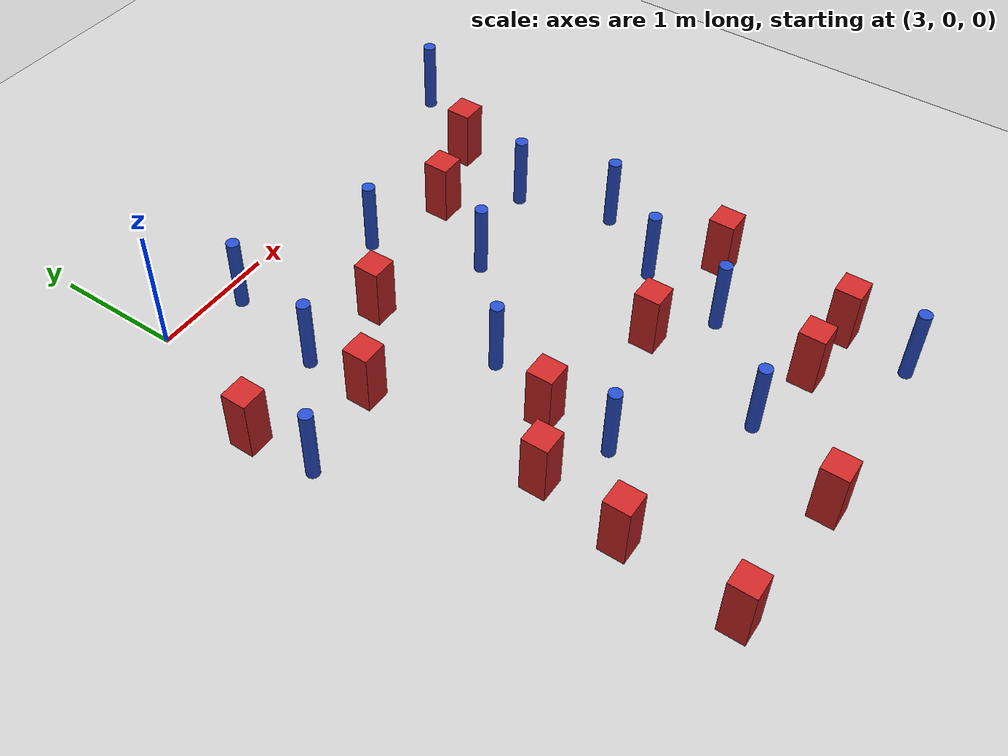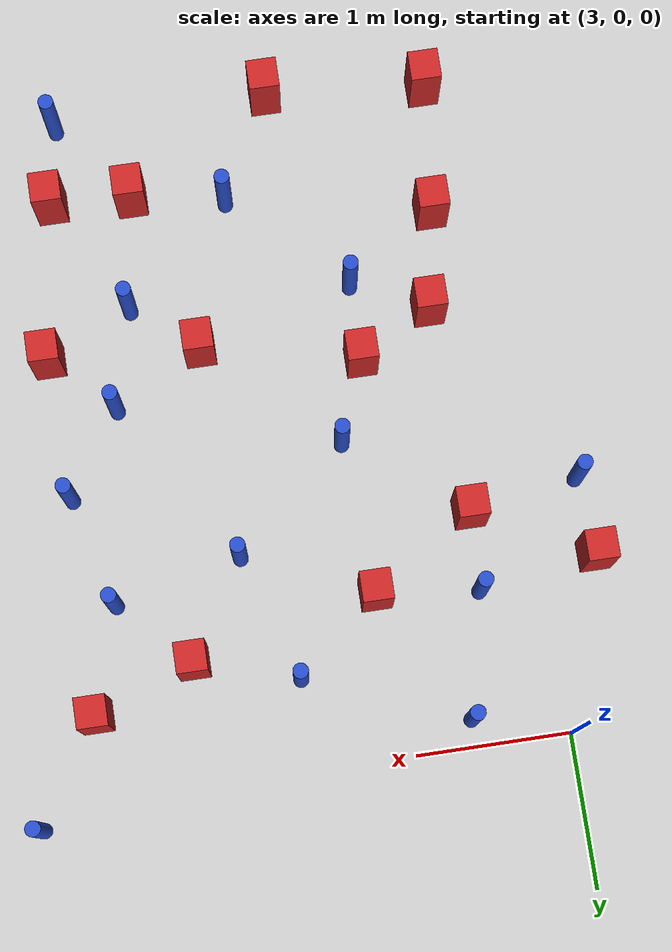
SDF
<sdf version="1.6">
 <world name="default">
  <model name="ground_plane">
   <static>1</static>
   <link name="link">
    <collision name="collision">
     <geometry><plane><normal>0 0 1</normal><size>100 100</size></plane></geometry>
     <surface><friction><ode><mu>100</mu><mu2>50</mu2></ode></friction></surface>
    </collision>
    <visual name="visual">
     <cast_shadows>0</cast_shadows>
     <geometry><plane><normal>0 0 1</normal><size>100 100</size></plane></geometry>
     <material>
      <ambient>1.0 1.0 1.0 1.0</ambient>
      <diffuse>0.8 0.8 0.8 1.0</diffuse>
      <specular>0.01 0.01 0.01 1.000000</specular>
     </material>
    </visual>
   </link>
  </model>
  <model name="pole_obstacle13">
   <static>true</static>
   <pose>3.61538598424 -0.178297688606 -3.09024884793e-07 -7.19054271913e-07 -2.11315075118e-07 -1.93935509258e-07</pose>
   <link name="link">
    <pose>0 0 0.3 0 -0 0</pose>
    <inertial>
     <mass>1</mass>
     <inertia><ixx>0.145833</ixx><ixy>0</ixy><ixz>0</ixz><iyy>0.145833</iyy><iyz>0</iyz><izz>0.125</izz></inertia>
    </inertial>
    <collision name="collision">
     <geometry><cylinder><radius>0.05</radius><length>.6</length></cylinder></geometry>
    </collision>
    <visual name="visual">
     <geometry><cylinder><radius>0.05</radius><length>.6</length></cylinder></geometry>
     <material>
      <script><name>Gazebo/Blue</name><uri>file://media/materials/scripts/gazebo.material</uri></script>
     </material>
    </visual>
   </link>
  </model>
  <model name="square_post_obstacle10">
   <static>true</static>
   <pose>6.00634124442 -2.9178933508 -4.36207812815e-07 3.75137919937e-06 9.77721102514e-07 2.47381364184e-05</pose>
   <link name="link">
    <pose>0 0 0.25 0 -0 0</pose>
    <inertial>
     <mass>100</mass>
     <inertia>
      <ixx>0.166667</ixx>
      <ixy>0</ixy>
      <ixz>0</ixz>
      <iyy>0.166667</iyy>
      <iyz>0</iyz>
      <izz>0.166667</izz>
     </inertia>
    </inertial>
    <collision name="collision"><geometry><box><size>.2 .2 .5</size></box></geometry></collision>
    <visual name="visual">
     <geometry><box><size>.2 .2 .5</size></box></geometry>
     <material>
      <script><name>Gazebo/Red</name><uri>file://media/materials/scripts/gazebo.material</uri></script>
     </material>
    </visual>
   </link>
  </model>
  <model name="square_post_obstacle13">
   <static>true</static>
   <pose>4.1084067479 -1.06865431788 -4.36207812815e-07 3.75137919937e-06 9.77721102514e-07 2.47381364184e-05</pose>
   <link name="link">
    <pose>0 0 0.25 0 -0 0</pose>
    <inertial>
     <mass>100</mass>
     <inertia>
      <ixx>0.166667</ixx>
      <ixy>0</ixy>
      <ixz>0</ixz>
      <iyy>0.166667</iyy>
      <iyz>0</iyz>
      <izz>0.166667</izz>
     </inertia>
    </inertial>
    <collision name="collision"><geometry><box><size>.2 .2 .5</size></box></geometry></collision>
    <visual name="visual">
     <geometry><box><size>.2 .2 .5</size></box></geometry>
     <material>
      <script><name>Gazebo/Red</name><uri>file://media/materials/scripts/gazebo.material</uri></script>
     </material>
    </visual>
   </link>
  </model>
  <model name="square_post_obstacle16">
   <static>true</static>
   <pose>5.85840954703 -3.97679554772 -4.36207812815e-07 3.75137919937e-06 9.77721102514e-07 2.47381364184e-05</pose>
   <link name="link">
    <pose>0 0 0.25 0 -0 0</pose>
    <inertial>
     <mass>100</mass>
     <inertia>
      <ixx>0.166667</ixx>
      <ixy>0</ixy>
      <ixz>0</ixz>
      <iyy>0.166667</iyy>
      <iyz>0</iyz>
      <izz>0.166667</izz>
     </inertia>
    </inertial>
    <collision name="collision"><geometry><box><size>.2 .2 .5</size></box></geometry></collision>
    <visual name="visual">
     <geometry><box><size>.2 .2 .5</size></box></geometry>
     <material>
      <script><name>Gazebo/Red</name><uri>file://media/materials/scripts/gazebo.material</uri></script>
     </material>
    </visual>
   </link>
  </model>
  <model name="square_post_obstacle18">
   <static>true</static>
   <pose>3.27307317317 -4.44356269826 -4.36207812815e-07 3.75137919937e-06 9.77721102514e-07 2.47381364184e-05</pose>
   <link name="link">
    <pose>0 0 0.25 0 -0 0</pose>
    <inertial>
     <mass>100</mass>
     <inertia>
      <ixx>0.166667</ixx>
      <ixy>0</ixy>
      <ixz>0</ixz>
      <iyy>0.166667</iyy>
      <iyz>0</iyz>
      <izz>0.166667</izz>
     </inertia>
    </inertial>
    <collision name="collision"><geometry><box><size>.2 .2 .5</size></box></geometry></collision>
    <visual name="visual">
     <geometry><box><size>.2 .2 .5</size></box></geometry>
     <material>
      <script><name>Gazebo/Red</name><uri>file://media/materials/scripts/gazebo.material</uri></script>
     </material>
    </visual>
   </link>
  </model>
  <model name="square_post_obstacle38">
   <static>true</static>
   <pose>3.9673430957 -2.62754604842 -4.36207812815e-07 3.75137919937e-06 9.77721102514e-07 2.47381364184e-05</pose>
   <link name="link">
    <pose>0 0 0.25 0 -0 0</pose>
    <inertial>
     <mass>100</mass>
     <inertia>
      <ixx>0.166667</ixx>
      <ixy>0</ixy>
      <ixz>0</ixz>
      <iyy>0.166667</iyy>
      <iyz>0</iyz>
      <izz>0.166667</izz>
     </inertia>
    </inertial>
    <collision name="collision"><geometry><box><size>.2 .2 .5</size></box></geometry></collision>
    <visual name="visual">
     <geometry><box><size>.2 .2 .5</size></box></geometry>
     <material>
      <script><name>Gazebo/Red</name><uri>file://media/materials/scripts/gazebo.material</uri></script>
     </material>
    </visual>
   </link>
  </model>
  <model name="pole_obstacle50">
   <static>true</static>
   <pose>2.69446637997 -1.63381578746 -3.09024884793e-07 -7.19054271912e-07 -2.11315075122e-07 -1.93935509259e-07</pose>
   <link name="link">
    <pose>0 0 0.3 0 -0 0</pose>
    <inertial>
     <mass>1</mass>
     <inertia><ixx>0.145833</ixx><ixy>0</ixy><ixz>0</ixz><iyy>0.145833</iyy><iyz>0</iyz><izz>0.125</izz></inertia>
    </inertial>
    <collision name="collision">
     <geometry><cylinder><radius>0.05</radius><length>.6</length></cylinder></geometry>
    </collision>
    <visual name="visual">
     <geometry><cylinder><radius>0.05</radius><length>.6</length></cylinder></geometry>
     <material>
      <script><name>Gazebo/Blue</name><uri>file://media/materials/scripts/gazebo.material</uri></script>
     </material>
    </visual>
   </link>
  </model>
  <model name="pole_obstacle56">
   <static>true</static>
   <pose>5.77068111608 -4.50896995325 -3.09024884793e-07 -7.19054271911e-07 -2.1131507516e-07 -1.93935509277e-07</pose>
   <link name="link">
    <pose>0 0 0.3 0 -0 0</pose>
    <inertial>
     <mass>1</mass>
     <inertia><ixx>0.145833</ixx><ixy>0</ixy><ixz>0</ixz><iyy>0.145833</iyy><iyz>0</iyz><izz>0.125</izz></inertia>
    </inertial>
    <collision name="collision">
     <geometry><cylinder><radius>0.05</radius><length>.6</length></cylinder></geometry>
    </collision>
    <visual name="visual">
     <geometry><cylinder><radius>0.05</radius><length>.6</length></cylinder></geometry>
     <material>
      <script><name>Gazebo/Blue</name><uri>file://media/materials/scripts/gazebo.material</uri></script>
     </material>
    </visual>
   </link>
  </model>
  <model name="pole_obstacle57">
   <static>true</static>
   <pose>4.17469020177 -2.08683572138 -3.09024884793e-07 -7.19054271912e-07 -2.11315075144e-07 -1.93935509269e-07</pose>
   <link name="link">
    <pose>0 0 0.3 0 -0 0</pose>
    <inertial>
     <mass>1</mass>
     <inertia><ixx>0.145833</ixx><ixy>0</ixy><ixz>0</ixz><iyy>0.145833</iyy><iyz>0</iyz><izz>0.125</izz></inertia>
    </inertial>
    <collision name="collision">
     <geometry><cylinder><radius>0.05</radius><length>.6</length></cylinder></geometry>
    </collision>
    <visual name="visual">
     <geometry><cylinder><radius>0.05</radius><length>.6</length></cylinder></geometry>
     <material>
      <script><name>Gazebo/Blue</name><uri>file://media/materials/scripts/gazebo.material</uri></script>
     </material>
    </visual>
   </link>
  </model>
  <model name="square_post_obstacle44">
   <static>true</static>
   <pose>5.00976881419 -2.84937262354 -4.36207812815e-07 3.75137919937e-06 9.77721102514e-07 2.47381364184e-05</pose>
   <link name="link">
    <pose>0 0 0.25 0 -0 0</pose>
    <inertial>
     <mass>100</mass>
     <inertia>
      <ixx>0.166667</ixx>
      <ixy>0</ixy>
      <ixz>0</ixz>
      <iyy>0.166667</iyy>
      <iyz>0</iyz>
      <izz>0.166667</izz>
     </inertia>
    </inertial>
    <collision name="collision"><geometry><box><size>.2 .2 .5</size></box></geometry></collision>
    <visual name="visual">
     <geometry><box><size>.2 .2 .5</size></box></geometry>
     <material>
      <script><name>Gazebo/Red</name><uri>file://media/materials/scripts/gazebo.material</uri></script>
     </material>
    </visual>
   </link>
  </model>
  <model name="square_post_obstacle45">
   <static>true</static>
   <pose>5.32962520952 -0.795322266309 -4.36207812815e-07 3.75137919937e-06 9.77721102514e-07 2.47381364184e-05</pose>
   <link name="link">
    <pose>0 0 0.25 0 -0 0</pose>
    <inertial>
     <mass>100</mass>
     <inertia>
      <ixx>0.166667</ixx>
      <ixy>0</ixy>
      <ixz>0</ixz>
      <iyy>0.166667</iyy>
      <iyz>0</iyz>
      <izz>0.166667</izz>
     </inertia>
    </inertial>
    <collision name="collision"><geometry><box><size>.2 .2 .5</size></box></geometry></collision>
    <visual name="visual">
     <geometry><box><size>.2 .2 .5</size></box></geometry>
     <material>
      <script><name>Gazebo/Red</name><uri>file://media/materials/scripts/gazebo.material</uri></script>
     </material>
    </visual>
   </link>
  </model>
  <model name="square_post_obstacle54">
   <static>true</static>
   <pose>3.47399532427 -2.90747570712 -4.36207812815e-07 3.75137919937e-06 9.77721102514e-07 2.47381364184e-05</pose>
   <link name="link">
    <pose>0 0 0.25 0 -0 0</pose>
    <inertial>
     <mass>100</mass>
     <inertia>
      <ixx>0.166667</ixx>
      <ixy>0</ixy>
      <ixz>0</ixz>
      <iyy>0.166667</iyy>
      <iyz>0</iyz>
      <izz>0.166667</izz>
     </inertia>
    </inertial>
    <collision name="collision"><geometry><box><size>.2 .2 .5</size></box></geometry></collision>
    <visual name="visual">
     <geometry><box><size>.2 .2 .5</size></box></geometry>
     <material>
      <script><name>Gazebo/Red</name><uri>file://media/materials/scripts/gazebo.material</uri></script>
     </material>
    </visual>
   </link>
  </model>
  <model name="pole_obstacle77">
   <static>true</static>
   <pose>5.43277344218 -3.18272493803 -3.09024884793e-07 -7.19054271912e-07 -2.11315075144e-07 -1.93935509269e-07</pose>
   <link name="link">
    <pose>0 0 0.3 0 -0 0</pose>
    <inertial>
     <mass>1</mass>
     <inertia><ixx>0.145833</ixx><ixy>0</ixy><ixz>0</ixz><iyy>0.145833</iyy><iyz>0</iyz><izz>0.125</izz></inertia>
    </inertial>
    <collision name="collision">
     <geometry><cylinder><radius>0.05</radius><length>.6</length></cylinder></geometry>
    </collision>
    <visual name="visual">
     <geometry><cylinder><radius>0.05</radius><length>.6</length></cylinder></geometry>
     <material>
      <script><name>Gazebo/Blue</name><uri>file://media/materials/scripts/gazebo.material</uri></script>
     </material>
    </visual>
   </link>
  </model>
  <model name="square_post_obstacle71">
   <static>true</static>
   <pose>3.42283665446 -1.51356876248 -4.36207812815e-07 3.75137919937e-06 9.77721102514e-07 2.47381364184e-05</pose>
   <link name="link">
    <pose>0 0 0.25 0 -0 0</pose>
    <inertial>
     <mass>100</mass>
     <inertia>
      <ixx>0.166667</ixx>
      <ixy>0</ixy>
      <ixz>0</ixz>
      <iyy>0.166667</iyy>
      <iyz>0</iyz>
      <izz>0.166667</izz>
     </inertia>
    </inertial>
    <collision name="collision"><geometry><box><size>.2 .2 .5</size></box></geometry></collision>
    <visual name="visual">
     <geometry><box><size>.2 .2 .5</size></box></geometry>
     <material>
      <script><name>Gazebo/Red</name><uri>file://media/materials/scripts/gazebo.material</uri></script>
     </material>
    </visual>
   </link>
  </model>
  <model name="pole_obstacle89">
   <static>true</static>
   <pose>3.43356436222 -0.990397719746 -3.09024884793e-07 -7.19054271912e-07 -2.11315075118e-07 -1.93935509258e-07</pose>
   <link name="link">
    <pose>0 0 0.3 0 -0 0</pose>
    <inertial>
     <mass>1</mass>
     <inertia><ixx>0.145833</ixx><ixy>0</ixy><ixz>0</ixz><iyy>0.145833</iyy><iyz>0</iyz><izz>0.125</izz></inertia>
    </inertial>
    <collision name="collision">
     <geometry><cylinder><radius>0.05</radius><length>.6</length></cylinder></geometry>
    </collision>
    <visual name="visual">
     <geometry><cylinder><radius>0.05</radius><length>.6</length></cylinder></geometry>
     <material>
      <script><name>Gazebo/Blue</name><uri>file://media/materials/scripts/gazebo.material</uri></script>
     </material>
    </visual>
   </link>
  </model>
  <model name="square_post_obstacle100">
   <static>true</static>
   <pose>5.98866814375 -0.543457092269 -4.36207812815e-07 3.75137919937e-06 9.77721102514e-07 2.47381364184e-05</pose>
   <link name="link">
    <pose>0 0 0.25 0 -0 0</pose>
    <inertial>
     <mass>100</mass>
     <inertia>
      <ixx>0.166667</ixx>
      <ixy>0</ixy>
      <ixz>0</ixz>
      <iyy>0.166667</iyy>
      <iyz>0</iyz>
      <izz>0.166667</izz>
     </inertia>
    </inertial>
    <collision name="collision"><geometry><box><size>.2 .2 .5</size></box></geometry></collision>
    <visual name="visual">
     <geometry><box><size>.2 .2 .5</size></box></geometry>
     <material>
      <script><name>Gazebo/Red</name><uri>file://media/materials/scripts/gazebo.material</uri></script>
     </material>
    </visual>
   </link>
  </model>
  <model name="square_post_obstacle108">
   <static>true</static>
   <pose>4.33939572859 -4.5386979894 -4.36207812815e-07 3.75137919937e-06 9.77721102514e-07 2.47381364184e-05</pose>
   <link name="link">
    <pose>0 0 0.25 0 -0 0</pose>
    <inertial>
     <mass>100</mass>
     <inertia>
      <ixx>0.166667</ixx>
      <ixy>0</ixy>
      <ixz>0</ixz>
      <iyy>0.166667</iyy>
      <iyz>0</iyz>
      <izz>0.166667</izz>
     </inertia>
    </inertial>
    <collision name="collision"><geometry><box><size>.2 .2 .5</size></box></geometry></collision>
    <visual name="visual">
     <geometry><box><size>.2 .2 .5</size></box></geometry>
     <material>
      <script><name>Gazebo/Red</name><uri>file://media/materials/scripts/gazebo.material</uri></script>
     </material>
    </visual>
   </link>
  </model>
  <model name="pole_obstacle117">
   <static>true</static>
   <pose>3.96332601038 -3.142268714 -3.09024884793e-07 -7.19054271912e-07 -2.11315075162e-07 -1.93935509281e-07</pose>
   <link name="link">
    <pose>0 0 0.3 0 -0 0</pose>
    <inertial>
     <mass>1</mass>
     <inertia><ixx>0.145833</ixx><ixy>0</ixy><ixz>0</ixz><iyy>0.145833</iyy><iyz>0</iyz><izz>0.125</izz></inertia>
    </inertial>
    <collision name="collision">
     <geometry><cylinder><radius>0.05</radius><length>.6</length></cylinder></geometry>
    </collision>
    <visual name="visual">
     <geometry><cylinder><radius>0.05</radius><length>.6</length></cylinder></geometry>
     <material>
      <script><name>Gazebo/Blue</name><uri>file://media/materials/scripts/gazebo.material</uri></script>
     </material>
    </visual>
   </link>
  </model>
  <model name="square_post_obstacle116">
   <static>true</static>
   <pose>3.35501110407 -3.57183601082 -4.36207812815e-07 3.75137919937e-06 9.77721102514e-07 2.47381364184e-05</pose>
   <link name="link">
    <pose>0 0 0.25 0 -0 0</pose>
    <inertial>
     <mass>100</mass>
     <inertia>
      <ixx>0.166667</ixx>
      <ixy>0</ixy>
      <ixz>0</ixz>
      <iyy>0.166667</iyy>
      <iyz>0</iyz>
      <izz>0.166667</izz>
     </inertia>
    </inertial>
    <collision name="collision"><geometry><box><size>.2 .2 .5</size></box></geometry></collision>
    <visual name="visual">
     <geometry><box><size>.2 .2 .5</size></box></geometry>
     <material>
      <script><name>Gazebo/Red</name><uri>file://media/materials/scripts/gazebo.material</uri></script>
     </material>
    </visual>
   </link>
  </model>
  <model name="pole_obstacle133">
   <static>true</static>
   <pose>4.9386062978 -1.431035205 -3.09024884793e-07 -7.19054271912e-07 -2.11315075124e-07 -1.93935509261e-07</pose>
   <link name="link">
    <pose>0 0 0.3 0 -0 0</pose>
    <inertial>
     <mass>1</mass>
     <inertia><ixx>0.145833</ixx><ixy>0</ixy><ixz>0</ixz><iyy>0.145833</iyy><iyz>0</iyz><izz>0.125</izz></inertia>
    </inertial>
    <collision name="collision">
     <geometry><cylinder><radius>0.05</radius><length>.6</length></cylinder></geometry>
    </collision>
    <visual name="visual">
     <geometry><cylinder><radius>0.05</radius><length>.6</length></cylinder></geometry>
     <material>
      <script><name>Gazebo/Blue</name><uri>file://media/materials/scripts/gazebo.material</uri></script>
     </material>
    </visual>
   </link>
  </model>
  <model name="pole_obstacle141">
   <static>true</static>
   <pose>6.41569057333 0.122113144835 -3.09024884793e-07 -7.19054271912e-07 -2.11315075128e-07 -1.93935509262e-07</pose>
   <link name="link">
    <pose>0 0 0.3 0 -0 0</pose>
    <inertial>
     <mass>1</mass>
     <inertia><ixx>0.145833</ixx><ixy>0</ixy><ixz>0</ixz><iyy>0.145833</iyy><iyz>0</iyz><izz>0.125</izz></inertia>
    </inertial>
    <collision name="collision">
     <geometry><cylinder><radius>0.05</radius><length>.6</length></cylinder></geometry>
    </collision>
    <visual name="visual">
     <geometry><cylinder><radius>0.05</radius><length>.6</length></cylinder></geometry>
     <material>
      <script><name>Gazebo/Blue</name><uri>file://media/materials/scripts/gazebo.material</uri></script>
     </material>
    </visual>
   </link>
  </model>
  <model name="square_post_obstacle155">
   <static>true</static>
   <pose>5.32333988051 -3.94661675032 -4.36207812815e-07 3.75137919937e-06 9.77721102514e-07 2.47381364184e-05</pose>
   <link name="link">
    <pose>0 0 0.25 0 -0 0</pose>
    <inertial>
     <mass>100</mass>
     <inertia>
      <ixx>0.166667</ixx>
      <ixy>0</ixy>
      <ixz>0</ixz>
      <iyy>0.166667</iyy>
      <iyz>0</iyz>
      <izz>0.166667</izz>
     </inertia>
    </inertial>
    <collision name="collision"><geometry><box><size>.2 .2 .5</size></box></geometry></collision>
    <visual name="visual">
     <geometry><box><size>.2 .2 .5</size></box></geometry>
     <material>
      <script><name>Gazebo/Red</name><uri>file://media/materials/scripts/gazebo.material</uri></script>
     </material>
    </visual>
   </link>
  </model>
  <model name="pole_obstacle167">
   <static>true</static>
   <pose>4.66063972361 -0.592339562835 -3.09024884793e-07 -7.19054271912e-07 -2.11315075134e-07 -1.93935509265e-07</pose>
   <link name="link">
    <pose>0 0 0.3 0 -0 0</pose>
    <inertial>
     <mass>1</mass>
     <inertia><ixx>0.145833</ixx><ixy>0</ixy><ixz>0</ixz><iyy>0.145833</iyy><iyz>0</iyz><izz>0.125</izz></inertia>
    </inertial>
    <collision name="collision">
     <geometry><cylinder><radius>0.05</radius><length>.6</length></cylinder></geometry>
    </collision>
    <visual name="visual">
     <geometry><cylinder><radius>0.05</radius><length>.6</length></cylinder></geometry>
     <material>
      <script><name>Gazebo/Blue</name><uri>file://media/materials/scripts/gazebo.material</uri></script>
     </material>
    </visual>
   </link>
  </model>
  <model name="pole_obstacle170">
   <static>true</static>
   <pose>5.97226849524 -1.96584426119 -3.09024884793e-07 -7.19054271912e-07 -2.11315075115e-07 -1.93935509255e-07</pose>
   <link name="link">
    <pose>0 0 0.3 0 -0 0</pose>
    <inertial>
     <mass>1</mass>
     <inertia><ixx>0.145833</ixx><ixy>0</ixy><ixz>0</ixz><iyy>0.145833</iyy><iyz>0</iyz><izz>0.125</izz></inertia>
    </inertial>
    <collision name="collision">
     <geometry><cylinder><radius>0.05</radius><length>.6</length></cylinder></geometry>
    </collision>
    <visual name="visual">
     <geometry><cylinder><radius>0.05</radius><length>.6</length></cylinder></geometry>
     <material>
      <script><name>Gazebo/Blue</name><uri>file://media/materials/scripts/gazebo.material</uri></script>
     </material>
    </visual>
   </link>
  </model>
  <model name="pole_obstacle172">
   <static>true</static>
   <pose>5.77800153562 -1.23539605424 -3.09024884793e-07 -7.19054271912e-07 -2.11315075124e-07 -1.93935509261e-07</pose>
   <link name="link">
    <pose>0 0 0.3 0 -0 0</pose>
    <inertial>
     <mass>1</mass>
     <inertia><ixx>0.145833</ixx><ixy>0</ixy><ixz>0</ixz><iyy>0.145833</iyy><iyz>0</iyz><izz>0.125</izz></inertia>
    </inertial>
    <collision name="collision">
     <geometry><cylinder><radius>0.05</radius><length>.6</length></cylinder></geometry>
    </collision>
    <visual name="visual">
     <geometry><cylinder><radius>0.05</radius><length>.6</length></cylinder></geometry>
     <material>
      <script><name>Gazebo/Blue</name><uri>file://media/materials/scripts/gazebo.material</uri></script>
     </material>
    </visual>
   </link>
  </model>
  <model name="pole_obstacle176">
   <static>true</static>
   <pose>4.70481419221 -3.83692386521 -3.09024884793e-07 -7.19054271912e-07 -2.11315075144e-07 -1.93935509269e-07</pose>
   <link name="link">
    <pose>0 0 0.3 0 -0 0</pose>
    <inertial>
     <mass>1</mass>
     <inertia><ixx>0.145833</ixx><ixy>0</ixy><ixz>0</ixz><iyy>0.145833</iyy><iyz>0</iyz><izz>0.125</izz></inertia>
    </inertial>
    <collision name="collision">
     <geometry><cylinder><radius>0.05</radius><length>.6</length></cylinder></geometry>
    </collision>
    <visual name="visual">
     <geometry><cylinder><radius>0.05</radius><length>.6</length></cylinder></geometry>
     <material>
      <script><name>Gazebo/Blue</name><uri>file://media/materials/scripts/gazebo.material</uri></script>
     </material>
    </visual>
   </link>
  </model>
  <model name="pole_obstacle213">
   <static>true</static>
   <pose>5.60473854101 -2.51982475295 -3.09024884793e-07 -7.19054271912e-07 -2.11315075144e-07 -1.93935509269e-07</pose>
   <link name="link">
    <pose>0 0 0.3 0 -0 0</pose>
    <inertial>
     <mass>1</mass>
     <inertia><ixx>0.145833</ixx><ixy>0</ixy><ixz>0</ixz><iyy>0.145833</iyy><iyz>0</iyz><izz>0.125</izz></inertia>
    </inertial>
    <collision name="collision">
     <geometry><cylinder><radius>0.05</radius><length>.6</length></cylinder></geometry>
    </collision>
    <visual name="visual">
     <geometry><cylinder><radius>0.05</radius><length>.6</length></cylinder></geometry>
     <material>
      <script><name>Gazebo/Blue</name><uri>file://media/materials/scripts/gazebo.material</uri></script>
     </material>
    </visual>
   </link>
  </model>
  <model name="square_post_obstacle215">
   <static>true</static>
   <pose>2.6616800552 -1.11960002533 -4.36207812815e-07 3.75137919937e-06 9.77721102514e-07 2.47381364184e-05</pose>
   <link name="link">
    <pose>0 0 0.25 0 -0 0</pose>
    <inertial>
     <mass>100</mass>
     <inertia>
      <ixx>0.166667</ixx>
      <ixy>0</ixy>
      <ixz>0</ixz>
      <iyy>0.166667</iyy>
      <iyz>0</iyz>
      <izz>0.166667</izz>
     </inertia>
    </inertial>
    <collision name="collision"><geometry><box><size>.2 .2 .5</size></box></geometry></collision>
    <visual name="visual">
     <geometry><box><size>.2 .2 .5</size></box></geometry>
     <material>
      <script><name>Gazebo/Red</name><uri>file://media/materials/scripts/gazebo.material</uri></script>
     </material>
    </visual>
   </link>
  </model>
 </world>
</sdf>
